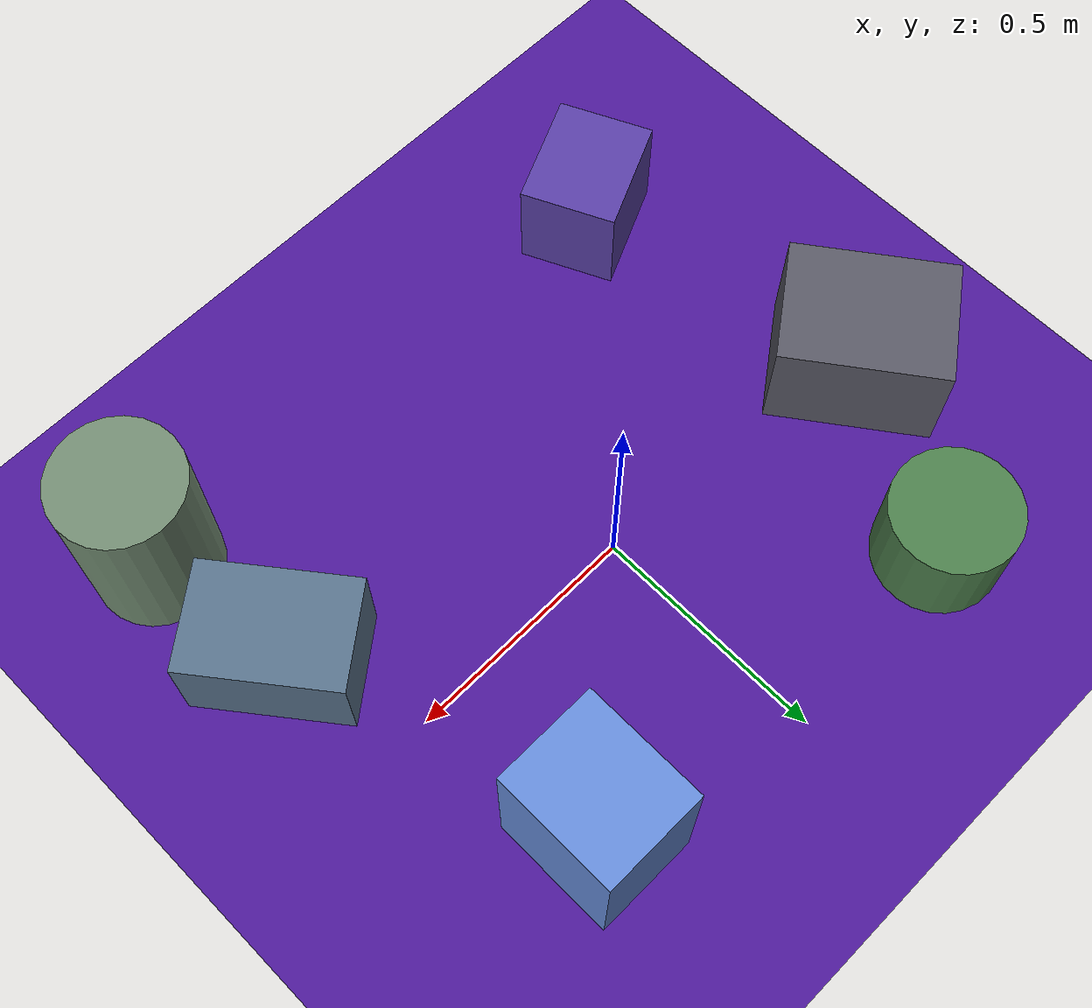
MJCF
<mujoco>
   <asset>
<texture type="skybox" builtin="gradient" rgb1="0.3 0.0 0.4" rgb2="0.8 0.9 0.5" width="256" height="256"/>
<texture name="checker_0" builtin="checker" rgb1="0.1 0.5 0.1" rgb2="0.6 0.2 0.7" width="200" height="200"/>
<texture name="gradient_1" builtin="gradient" rgb1="0.6 0.2 0.7" rgb2="0.2 0.9 1.0" width="200" height="200"/>
<texture name="checker_2" builtin="checker" rgb1="0.4 0.4 0.9" rgb2="0.3 0.1 0.4" width="200" height="200"/>
<texture name="gradient_3" builtin="gradient" rgb1="0.4 0.5 0.4" rgb2="0.5 0.6 0.5" width="200" height="200"/>
<texture name="flat_4" builtin="flat" rgb1="0.3 0.5 0.3" rgb2="0.3 0.5 0.3"  width="200" height="200"/>
<texture name="gradient_5" builtin="gradient" rgb1="0.6 0.2 0.5" rgb2="0.1 0.7 0.6" width="200" height="200"/><material name="checker_0_mat" reflectance="0" texrepeat="2 2" texture="checker_0" texuniform="false" />
<material name="gradient_1_mat" reflectance="0" texture="gradient_1" texuniform="true"/>
<material name="checker_2_mat" reflectance="0" texrepeat="2 2" texture="checker_2" texuniform="false" />
<material name="gradient_3_mat" reflectance="0" texture="gradient_3" texuniform="true"/>
<material name="flat_4_mat" reflectance="0" texture="flat_4" texuniform="true"/>
<material name="gradient_5_mat" reflectance="0" texture="gradient_5" texuniform="true"/>
   </asset>

   <worldbody>
      <light diffuse=".9 .9 .9" pos="0 0 3" dir="0 0 -1"/>
     <geom type="plane" size="1 1 0.1" rgba="0.3 0.1 0.6 1"/>
<geom type="box" pos="-0.63 0.07 0.12" size="0.13 0.17 0.12" material="checker_0_mat" euler="0 0 36" />
<geom type="box" pos="0.43 0.37 0.17" size="0.11 0.13 0.17" material="gradient_1_mat" euler="0 0 0" />
<geom type="box" pos="-0.5 -0.57 0.11" size="0.12 0.1 0.11" material="checker_2_mat" euler="0 0 25" />
<geom type="cylinder" pos="0.65 -0.6 0.19" size="0.13 0.19 0.19" material="gradient_3_mat" euler="0 0 44" />
<geom type="cylinder" pos="-0.44 0.45 0.1" size="0.13 0.1 0.1" material="flat_4_mat" euler="0 0 49" />
<geom type="box" pos="0.61 -0.28 0.1" size="0.11 0.16 0.1" material="gradient_5_mat" euler="0 0 38" /><camera euler="60 0 180" fovy="60" name="camera1" pos="-0.2 -1.5 1"></camera>   </worldbody>
</mujoco>
